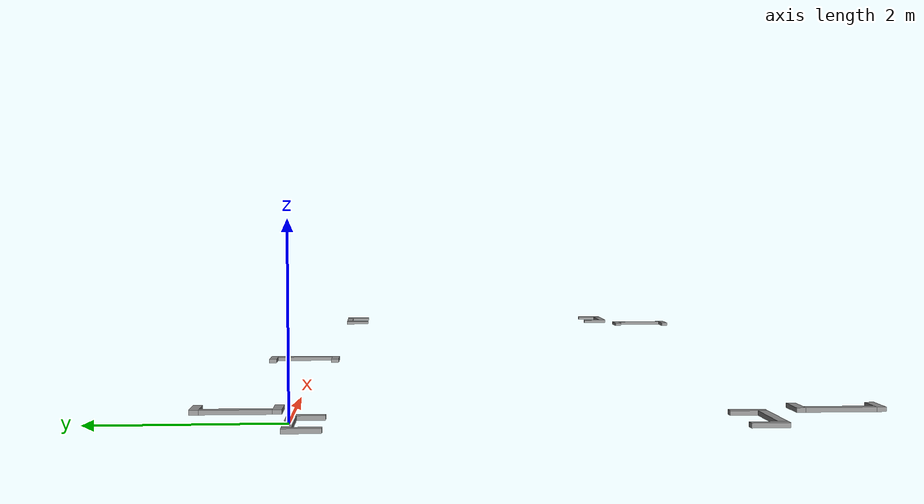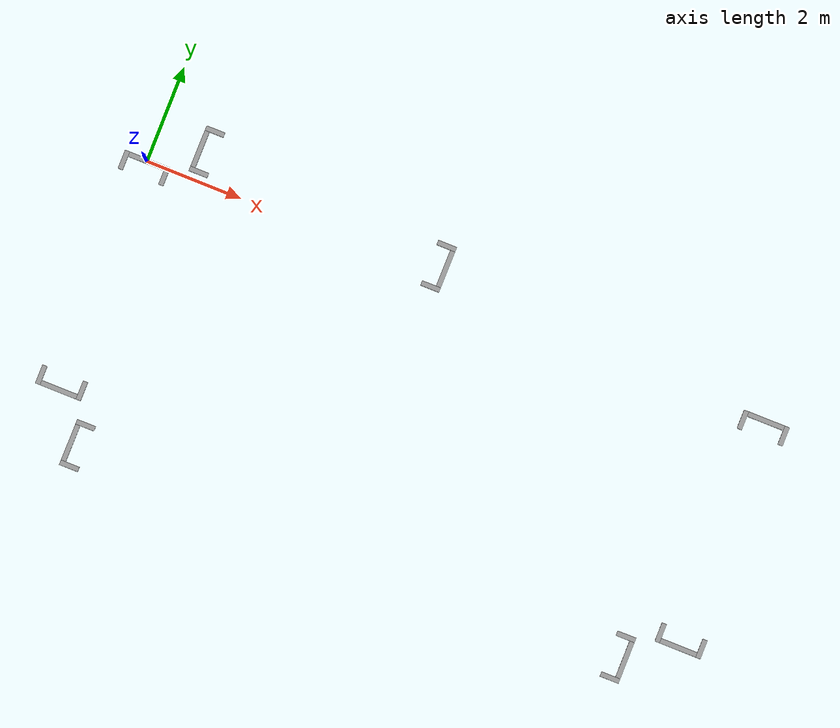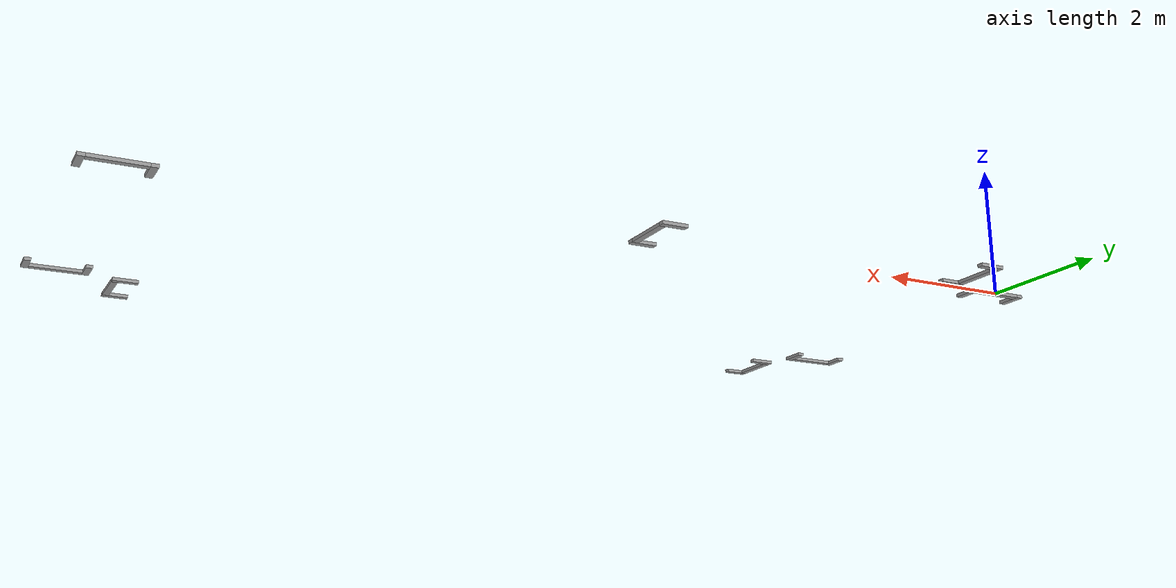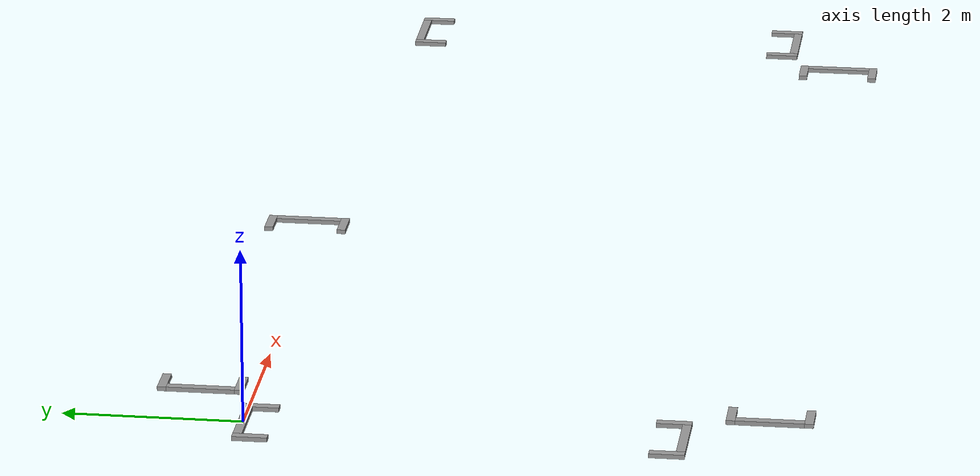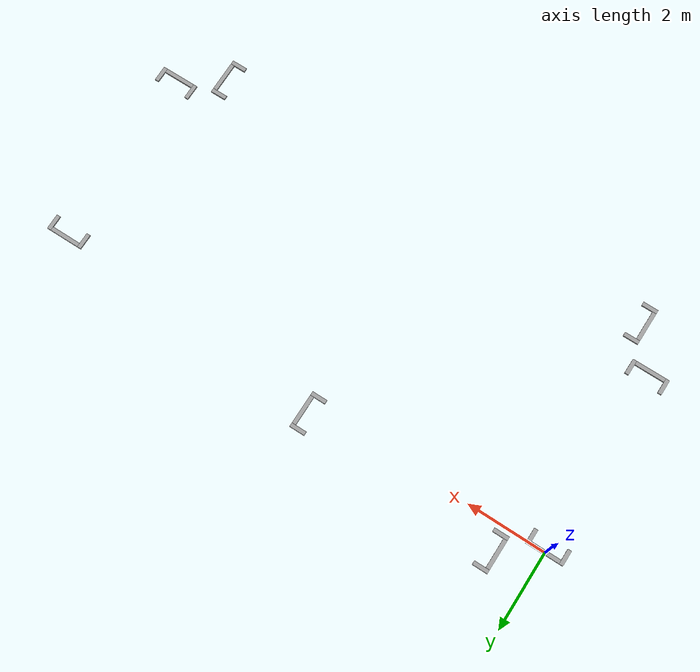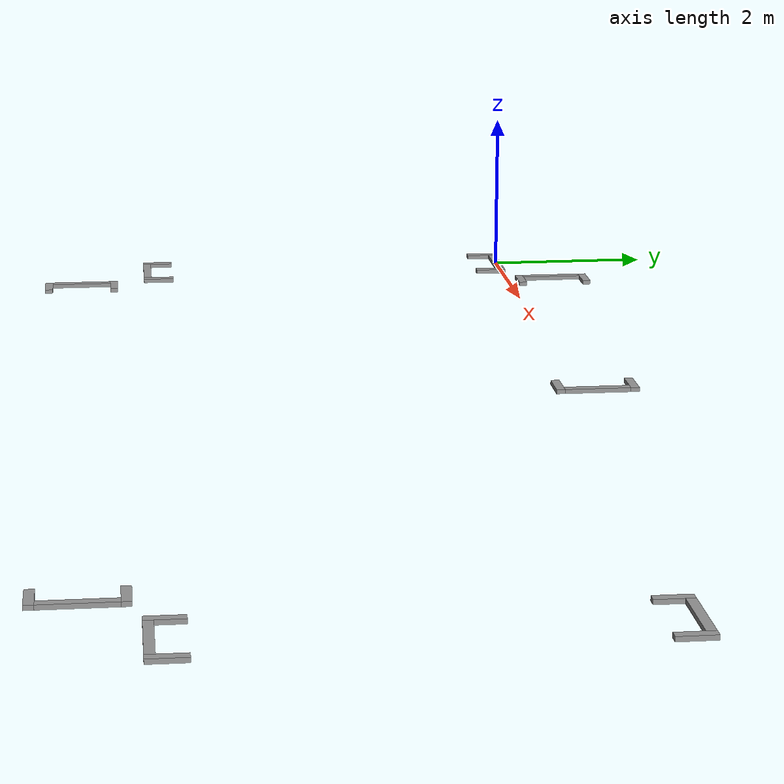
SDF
<?xml version='1.0'?>
<sdf version='1.7'>
  <model name='rack_base'>
    <link name='link'>
      <inertial>
        <pose>0 0 0 0 -0.0 0.0</pose>
        <mass>1.87</mass>
        <inertia>
          <ixx>0.01857</ixx>
          <ixy>0</ixy>
          <ixz>0</ixz>
          <iyy>0.015598</iyy>
          <iyz>0</iyz>
          <izz>0.00305</izz>
        </inertia>
      </inertial>
      <self_collide>0</self_collide>
      <enable_wind>0</enable_wind>
      <kinematic>0</kinematic>
      <pose>0 -0.154224 0 0 -0 0</pose>
      <gravity>1</gravity>
      <visual name='visual_3'>
        <cast_shadows>0</cast_shadows>
        <geometry>
          <box>
            <size>0.1 0.39 0.05</size>
          </box>
        </geometry>
        <material>
          <lighting>1</lighting>
          <script>
            <uri>file://media/materials/scripts/gazebo.material</uri>
            <name>Gazebo/Grey</name>
          </script>
          <shader type='pixel'>
            <normal_map>__default__</normal_map>
          </shader>
          <ambient>0.3 0.3 0.3 1</ambient>
          <diffuse>0.7 0.7 0.7 1</diffuse>
          <specular>0.01 0.01 0.01 1</specular>
          <emissive>0 0 0 1</emissive>
        </material>
        <pose>0.43 0.01 0 0 -0 0</pose>
        <transparency>0</transparency>
      </visual>
      <visual name='visual_4'>
        <cast_shadows>0</cast_shadows>
        <geometry>
          <box>
            <size>0.1 0.39 0.05</size>
          </box>
        </geometry>
        <material>
          <lighting>1</lighting>
          <script>
            <uri>file://media/materials/scripts/gazebo.material</uri>
            <name>Gazebo/Grey</name>
          </script>
          <shader type='pixel'>
            <normal_map>__default__</normal_map>
          </shader>
          <ambient>0.3 0.3 0.3 1</ambient>
          <diffuse>0.7 0.7 0.7 1</diffuse>
          <specular>0.01 0.01 0.01 1</specular>
          <emissive>0 0 0 1</emissive>
        </material>
        <pose>-0.43 0.01 0 0 -0 0</pose>
        <transparency>0</transparency>
      </visual>
      <visual name='visual_1'>
        <cast_shadows>0</cast_shadows>
        <geometry>
          <box>
            <size>0.76 0.1 0.05</size>
          </box>
        </geometry>
        <material>
          <lighting>1</lighting>
          <script>
            <uri>file://media/materials/scripts/gazebo.material</uri>
            <name>Gazebo/Grey</name>
          </script>
          <shader type='pixel'>
            <normal_map>__default__</normal_map>
          </shader>
          <ambient>0.3 0.3 0.3 1</ambient>
          <diffuse>0.7 0.7 0.7 1</diffuse>
          <specular>0.01 0.01 0.01 1</specular>
          <emissive>0 0 0 1</emissive>
        </material>
        <pose>0 0.155 0 0 -0 0</pose>
        <transparency>0</transparency>
      </visual>
      <collision name='collision_7'>
        <laser_retro>0</laser_retro>
        <max_contacts>10</max_contacts>
        <pose>0.43 0.01 0 0 -0 0</pose>
        <geometry>
          <box>
            <size>0.1 0.39 0.05</size>
          </box>
        </geometry>
        <surface>
          <friction>
            <ode>
              <mu>1</mu>
              <mu2>1</mu2>
              <fdir1>0 0 0</fdir1>
              <slip1>0</slip1>
              <slip2>0</slip2>
            </ode>
            <torsional>
              <coefficient>1</coefficient>
              <patch_radius>0</patch_radius>
              <surface_radius>0</surface_radius>
              <use_patch_radius>1</use_patch_radius>
              <ode>
                <slip>0</slip>
              </ode>
            </torsional>
          </friction>
          <bounce>
            <restitution_coefficient>0</restitution_coefficient>
            <threshold>1e+06</threshold>
          </bounce>
          <contact>
            <collide_without_contact>0</collide_without_contact>
            <collide_without_contact_bitmask>1</collide_without_contact_bitmask>
            <collide_bitmask>1</collide_bitmask>
            <ode>
              <soft_cfm>0</soft_cfm>
              <soft_erp>0.2</soft_erp>
              <kp>1e+13</kp>
              <kd>1</kd>
              <max_vel>0.01</max_vel>
              <min_depth>0</min_depth>
            </ode>
            <bullet>
              <split_impulse>1</split_impulse>
              <split_impulse_penetration_threshold>-0.01</split_impulse_penetration_threshold>
              <soft_cfm>0</soft_cfm>
              <soft_erp>0.2</soft_erp>
              <kp>1e+13</kp>
              <kd>1</kd>
            </bullet>
          </contact>
        </surface>
      </collision>
      <collision name='collision_8'>
        <laser_retro>0</laser_retro>
        <max_contacts>10</max_contacts>
        <pose>-0.43 0.01 0 0 -0 0</pose>
        <geometry>
          <box>
            <size>0.1 0.39 0.05</size>
          </box>
        </geometry>
        <surface>
          <friction>
            <ode>
              <mu>1</mu>
              <mu2>1</mu2>
              <fdir1>0 0 0</fdir1>
              <slip1>0</slip1>
              <slip2>0</slip2>
            </ode>
            <torsional>
              <coefficient>1</coefficient>
              <patch_radius>0</patch_radius>
              <surface_radius>0</surface_radius>
              <use_patch_radius>1</use_patch_radius>
              <ode>
                <slip>0</slip>
              </ode>
            </torsional>
          </friction>
          <bounce>
            <restitution_coefficient>0</restitution_coefficient>
            <threshold>1e+06</threshold>
          </bounce>
          <contact>
            <collide_without_contact>0</collide_without_contact>
            <collide_without_contact_bitmask>1</collide_without_contact_bitmask>
            <collide_bitmask>1</collide_bitmask>
            <ode>
              <soft_cfm>0</soft_cfm>
              <soft_erp>0.2</soft_erp>
              <kp>1e+13</kp>
              <kd>1</kd>
              <max_vel>0.01</max_vel>
              <min_depth>0</min_depth>
            </ode>
            <bullet>
              <split_impulse>1</split_impulse>
              <split_impulse_penetration_threshold>-0.01</split_impulse_penetration_threshold>
              <soft_cfm>0</soft_cfm>
              <soft_erp>0.2</soft_erp>
              <kp>1e+13</kp>
              <kd>1</kd>
            </bullet>
          </contact>
        </surface>
      </collision>
      <collision name='collision_6'>
        <laser_retro>0</laser_retro>
        <max_contacts>10</max_contacts>
        <pose>0 0.155 0 0 -0 0</pose>
        <geometry>
          <box>
            <size>0.76 0.1 0.05</size>
          </box>
        </geometry>
        <surface>
          <friction>
            <ode>
              <mu>1</mu>
              <mu2>1</mu2>
              <fdir1>0 0 0</fdir1>
              <slip1>0</slip1>
              <slip2>0</slip2>
            </ode>
            <torsional>
              <coefficient>1</coefficient>
              <patch_radius>0</patch_radius>
              <surface_radius>0</surface_radius>
              <use_patch_radius>1</use_patch_radius>
              <ode>
                <slip>0</slip>
              </ode>
            </torsional>
          </friction>
          <bounce>
            <restitution_coefficient>0</restitution_coefficient>
            <threshold>1e+06</threshold>
          </bounce>
          <contact>
            <collide_without_contact>0</collide_without_contact>
            <collide_without_contact_bitmask>1</collide_without_contact_bitmask>
            <collide_bitmask>1</collide_bitmask>
            <ode>
              <soft_cfm>0</soft_cfm>
              <soft_erp>0.2</soft_erp>
              <kp>1e+13</kp>
              <kd>1</kd>
              <max_vel>0.01</max_vel>
              <min_depth>0</min_depth>
            </ode>
            <bullet>
              <split_impulse>1</split_impulse>
              <split_impulse_penetration_threshold>-0.01</split_impulse_penetration_threshold>
              <soft_cfm>0</soft_cfm>
              <soft_erp>0.2</soft_erp>
              <kp>1e+13</kp>
              <kd>1</kd>
            </bullet>
          </contact>
        </surface>
      </collision>
    </link>
    <link name='link_clone'>
      <inertial>
        <pose>0 0 0 0 -0 0</pose>
        <mass>1.87</mass>
        <inertia>
          <ixx>0.01857</ixx>
          <ixy>0</ixy>
          <ixz>0</ixz>
          <iyy>0.015598</iyy>
          <iyz>0</iyz>
          <izz>0.00305</izz>
        </inertia>
      </inertial>
      <self_collide>0</self_collide>
      <enable_wind>0</enable_wind>
      <kinematic>0</kinematic>
      <pose>1.04088 0.608999 0 0 -0 1.57</pose>
      <gravity>1</gravity>
      <visual name='visual_1'>
        <cast_shadows>0</cast_shadows>
        <geometry>
          <box>
            <size>0.76 0.1 0.05</size>
          </box>
        </geometry>
        <material>
          <lighting>1</lighting>
          <script>
            <uri>file://media/materials/scripts/gazebo.material</uri>
            <name>Gazebo/Grey</name>
          </script>
          <shader type='pixel'>
            <normal_map>__default__</normal_map>
          </shader>
          <ambient>0.3 0.3 0.3 1</ambient>
          <diffuse>0.7 0.7 0.7 1</diffuse>
          <specular>0.01 0.01 0.01 1</specular>
          <emissive>0 0 0 1</emissive>
        </material>
        <pose>0 0.155 0 0 -0 0</pose>
        <transparency>0</transparency>
      </visual>
      <visual name='visual_3'>
        <cast_shadows>0</cast_shadows>
        <geometry>
          <box>
            <size>0.1 0.39 0.05</size>
          </box>
        </geometry>
        <material>
          <lighting>1</lighting>
          <script>
            <uri>file://media/materials/scripts/gazebo.material</uri>
            <name>Gazebo/Grey</name>
          </script>
          <shader type='pixel'>
            <normal_map>__default__</normal_map>
          </shader>
          <ambient>0.3 0.3 0.3 1</ambient>
          <diffuse>0.7 0.7 0.7 1</diffuse>
          <specular>0.01 0.01 0.01 1</specular>
          <emissive>0 0 0 1</emissive>
        </material>
        <pose>0.43 0.01 0 0 -0 0</pose>
        <transparency>0</transparency>
      </visual>
      <visual name='visual_4'>
        <cast_shadows>0</cast_shadows>
        <geometry>
          <box>
            <size>0.1 0.39 0.05</size>
          </box>
        </geometry>
        <material>
          <lighting>1</lighting>
          <script>
            <uri>file://media/materials/scripts/gazebo.material</uri>
            <name>Gazebo/Grey</name>
          </script>
          <shader type='pixel'>
            <normal_map>__default__</normal_map>
          </shader>
          <ambient>0.3 0.3 0.3 1</ambient>
          <diffuse>0.7 0.7 0.7 1</diffuse>
          <specular>0.01 0.01 0.01 1</specular>
          <emissive>0 0 0 1</emissive>
        </material>
        <pose>-0.43 0.01 0 0 -0 0</pose>
        <transparency>0</transparency>
      </visual>
      <collision name='collision_7'>
        <laser_retro>0</laser_retro>
        <max_contacts>10</max_contacts>
        <pose>0.43 0.01 0 0 -0 0</pose>
        <geometry>
          <box>
            <size>0.1 0.39 0.05</size>
          </box>
        </geometry>
        <surface>
          <friction>
            <ode>
              <mu>1</mu>
              <mu2>1</mu2>
              <fdir1>0 0 0</fdir1>
              <slip1>0</slip1>
              <slip2>0</slip2>
            </ode>
            <torsional>
              <coefficient>1</coefficient>
              <patch_radius>0</patch_radius>
              <surface_radius>0</surface_radius>
              <use_patch_radius>1</use_patch_radius>
              <ode>
                <slip>0</slip>
              </ode>
            </torsional>
          </friction>
          <bounce>
            <restitution_coefficient>0</restitution_coefficient>
            <threshold>1e+06</threshold>
          </bounce>
          <contact>
            <collide_without_contact>0</collide_without_contact>
            <collide_without_contact_bitmask>1</collide_without_contact_bitmask>
            <collide_bitmask>1</collide_bitmask>
            <ode>
              <soft_cfm>0</soft_cfm>
              <soft_erp>0.2</soft_erp>
              <kp>1e+13</kp>
              <kd>1</kd>
              <max_vel>0.01</max_vel>
              <min_depth>0</min_depth>
            </ode>
            <bullet>
              <split_impulse>1</split_impulse>
              <split_impulse_penetration_threshold>-0.01</split_impulse_penetration_threshold>
              <soft_cfm>0</soft_cfm>
              <soft_erp>0.2</soft_erp>
              <kp>1e+13</kp>
              <kd>1</kd>
            </bullet>
          </contact>
        </surface>
      </collision>
      <collision name='collision_8'>
        <laser_retro>0</laser_retro>
        <max_contacts>10</max_contacts>
        <pose>-0.43 0.01 0 0 -0 0</pose>
        <geometry>
          <box>
            <size>0.1 0.39 0.05</size>
          </box>
        </geometry>
        <surface>
          <friction>
            <ode>
              <mu>1</mu>
              <mu2>1</mu2>
              <fdir1>0 0 0</fdir1>
              <slip1>0</slip1>
              <slip2>0</slip2>
            </ode>
            <torsional>
              <coefficient>1</coefficient>
              <patch_radius>0</patch_radius>
              <surface_radius>0</surface_radius>
              <use_patch_radius>1</use_patch_radius>
              <ode>
                <slip>0</slip>
              </ode>
            </torsional>
          </friction>
          <bounce>
            <restitution_coefficient>0</restitution_coefficient>
            <threshold>1e+06</threshold>
          </bounce>
          <contact>
            <collide_without_contact>0</collide_without_contact>
            <collide_without_contact_bitmask>1</collide_without_contact_bitmask>
            <collide_bitmask>1</collide_bitmask>
            <ode>
              <soft_cfm>0</soft_cfm>
              <soft_erp>0.2</soft_erp>
              <kp>1e+13</kp>
              <kd>1</kd>
              <max_vel>0.01</max_vel>
              <min_depth>0</min_depth>
            </ode>
            <bullet>
              <split_impulse>1</split_impulse>
              <split_impulse_penetration_threshold>-0.01</split_impulse_penetration_threshold>
              <soft_cfm>0</soft_cfm>
              <soft_erp>0.2</soft_erp>
              <kp>1e+13</kp>
              <kd>1</kd>
            </bullet>
          </contact>
        </surface>
      </collision>
      <collision name='collision_6'>
        <laser_retro>0</laser_retro>
        <max_contacts>10</max_contacts>
        <pose>0 0.155 0 0 -0 0</pose>
        <geometry>
          <box>
            <size>0.76 0.1 0.05</size>
          </box>
        </geometry>
        <surface>
          <friction>
            <ode>
              <mu>1</mu>
              <mu2>1</mu2>
              <fdir1>0 0 0</fdir1>
              <slip1>0</slip1>
              <slip2>0</slip2>
            </ode>
            <torsional>
              <coefficient>1</coefficient>
              <patch_radius>0</patch_radius>
              <surface_radius>0</surface_radius>
              <use_patch_radius>1</use_patch_radius>
              <ode>
                <slip>0</slip>
              </ode>
            </torsional>
          </friction>
          <bounce>
            <restitution_coefficient>0</restitution_coefficient>
            <threshold>1e+06</threshold>
          </bounce>
          <contact>
            <collide_without_contact>0</collide_without_contact>
            <collide_without_contact_bitmask>1</collide_without_contact_bitmask>
            <collide_bitmask>1</collide_bitmask>
            <ode>
              <soft_cfm>0</soft_cfm>
              <soft_erp>0.2</soft_erp>
              <kp>1e+13</kp>
              <kd>1</kd>
              <max_vel>0.01</max_vel>
              <min_depth>0</min_depth>
            </ode>
            <bullet>
              <split_impulse>1</split_impulse>
              <split_impulse_penetration_threshold>-0.01</split_impulse_penetration_threshold>
              <soft_cfm>0</soft_cfm>
              <soft_erp>0.2</soft_erp>
              <kp>1e+13</kp>
              <kd>1</kd>
            </bullet>
          </contact>
        </surface>
      </collision>
    </link>
    <link name='link_clone_clone'>
      <inertial>
        <pose>0 0 0 0 -0 0</pose>
        <mass>1.87</mass>
        <inertia>
          <ixx>0.01857</ixx>
          <ixy>0</ixy>
          <ixz>0</ixz>
          <iyy>0.015598</iyy>
          <iyz>0</iyz>
          <izz>0.00305</izz>
        </inertia>
      </inertial>
      <self_collide>0</self_collide>
      <enable_wind>0</enable_wind>
      <kinematic>0</kinematic>
      <pose>0.063792 -4.66838 0 0 -0 3.14</pose>
      <gravity>1</gravity>
      <visual name='visual_3'>
        <cast_shadows>0</cast_shadows>
        <geometry>
          <box>
            <size>0.1 0.39 0.05</size>
          </box>
        </geometry>
        <material>
          <lighting>1</lighting>
          <script>
            <uri>file://media/materials/scripts/gazebo.material</uri>
            <name>Gazebo/Grey</name>
          </script>
          <shader type='pixel'>
            <normal_map>__default__</normal_map>
          </shader>
          <ambient>0.3 0.3 0.3 1</ambient>
          <diffuse>0.7 0.7 0.7 1</diffuse>
          <specular>0.01 0.01 0.01 1</specular>
          <emissive>0 0 0 1</emissive>
        </material>
        <pose>0.43 0.01 0 0 -0 0</pose>
        <transparency>0</transparency>
      </visual>
      <visual name='visual_1'>
        <cast_shadows>0</cast_shadows>
        <geometry>
          <box>
            <size>0.76 0.1 0.05</size>
          </box>
        </geometry>
        <material>
          <lighting>1</lighting>
          <script>
            <uri>file://media/materials/scripts/gazebo.material</uri>
            <name>Gazebo/Grey</name>
          </script>
          <shader type='pixel'>
            <normal_map>__default__</normal_map>
          </shader>
          <ambient>0.3 0.3 0.3 1</ambient>
          <diffuse>0.7 0.7 0.7 1</diffuse>
          <specular>0.01 0.01 0.01 1</specular>
          <emissive>0 0 0 1</emissive>
        </material>
        <pose>0 0.155 0 0 -0 0</pose>
        <transparency>0</transparency>
      </visual>
      <visual name='visual_4'>
        <cast_shadows>0</cast_shadows>
        <geometry>
          <box>
            <size>0.1 0.39 0.05</size>
          </box>
        </geometry>
        <material>
          <lighting>1</lighting>
          <script>
            <uri>file://media/materials/scripts/gazebo.material</uri>
            <name>Gazebo/Grey</name>
          </script>
          <shader type='pixel'>
            <normal_map>__default__</normal_map>
          </shader>
          <ambient>0.3 0.3 0.3 1</ambient>
          <diffuse>0.7 0.7 0.7 1</diffuse>
          <specular>0.01 0.01 0.01 1</specular>
          <emissive>0 0 0 1</emissive>
        </material>
        <pose>-0.43 0.01 0 0 -0 0</pose>
        <transparency>0</transparency>
      </visual>
      <collision name='collision_8'>
        <laser_retro>0</laser_retro>
        <max_contacts>10</max_contacts>
        <pose>-0.43 0.01 0 0 -0 0</pose>
        <geometry>
          <box>
            <size>0.1 0.39 0.05</size>
          </box>
        </geometry>
        <surface>
          <friction>
            <ode>
              <mu>1</mu>
              <mu2>1</mu2>
              <fdir1>0 0 0</fdir1>
              <slip1>0</slip1>
              <slip2>0</slip2>
            </ode>
            <torsional>
              <coefficient>1</coefficient>
              <patch_radius>0</patch_radius>
              <surface_radius>0</surface_radius>
              <use_patch_radius>1</use_patch_radius>
              <ode>
                <slip>0</slip>
              </ode>
            </torsional>
          </friction>
          <bounce>
            <restitution_coefficient>0</restitution_coefficient>
            <threshold>1e+06</threshold>
          </bounce>
          <contact>
            <collide_without_contact>0</collide_without_contact>
            <collide_without_contact_bitmask>1</collide_without_contact_bitmask>
            <collide_bitmask>1</collide_bitmask>
            <ode>
              <soft_cfm>0</soft_cfm>
              <soft_erp>0.2</soft_erp>
              <kp>1e+13</kp>
              <kd>1</kd>
              <max_vel>0.01</max_vel>
              <min_depth>0</min_depth>
            </ode>
            <bullet>
              <split_impulse>1</split_impulse>
              <split_impulse_penetration_threshold>-0.01</split_impulse_penetration_threshold>
              <soft_cfm>0</soft_cfm>
              <soft_erp>0.2</soft_erp>
              <kp>1e+13</kp>
              <kd>1</kd>
            </bullet>
          </contact>
        </surface>
      </collision>
      <collision name='collision_7'>
        <laser_retro>0</laser_retro>
        <max_contacts>10</max_contacts>
        <pose>0.43 0.01 0 0 -0 0</pose>
        <geometry>
          <box>
            <size>0.1 0.39 0.05</size>
          </box>
        </geometry>
        <surface>
          <friction>
            <ode>
              <mu>1</mu>
              <mu2>1</mu2>
              <fdir1>0 0 0</fdir1>
              <slip1>0</slip1>
              <slip2>0</slip2>
            </ode>
            <torsional>
              <coefficient>1</coefficient>
              <patch_radius>0</patch_radius>
              <surface_radius>0</surface_radius>
              <use_patch_radius>1</use_patch_radius>
              <ode>
                <slip>0</slip>
              </ode>
            </torsional>
          </friction>
          <bounce>
            <restitution_coefficient>0</restitution_coefficient>
            <threshold>1e+06</threshold>
          </bounce>
          <contact>
            <collide_without_contact>0</collide_without_contact>
            <collide_without_contact_bitmask>1</collide_without_contact_bitmask>
            <collide_bitmask>1</collide_bitmask>
            <ode>
              <soft_cfm>0</soft_cfm>
              <soft_erp>0.2</soft_erp>
              <kp>1e+13</kp>
              <kd>1</kd>
              <max_vel>0.01</max_vel>
              <min_depth>0</min_depth>
            </ode>
            <bullet>
              <split_impulse>1</split_impulse>
              <split_impulse_penetration_threshold>-0.01</split_impulse_penetration_threshold>
              <soft_cfm>0</soft_cfm>
              <soft_erp>0.2</soft_erp>
              <kp>1e+13</kp>
              <kd>1</kd>
            </bullet>
          </contact>
        </surface>
      </collision>
      <collision name='collision_6'>
        <laser_retro>0</laser_retro>
        <max_contacts>10</max_contacts>
        <pose>0 0.155 0 0 -0 0</pose>
        <geometry>
          <box>
            <size>0.76 0.1 0.05</size>
          </box>
        </geometry>
        <surface>
          <friction>
            <ode>
              <mu>1</mu>
              <mu2>1</mu2>
              <fdir1>0 0 0</fdir1>
              <slip1>0</slip1>
              <slip2>0</slip2>
            </ode>
            <torsional>
              <coefficient>1</coefficient>
              <patch_radius>0</patch_radius>
              <surface_radius>0</surface_radius>
              <use_patch_radius>1</use_patch_radius>
              <ode>
                <slip>0</slip>
              </ode>
            </torsional>
          </friction>
          <bounce>
            <restitution_coefficient>0</restitution_coefficient>
            <threshold>1e+06</threshold>
          </bounce>
          <contact>
            <collide_without_contact>0</collide_without_contact>
            <collide_without_contact_bitmask>1</collide_without_contact_bitmask>
            <collide_bitmask>1</collide_bitmask>
            <ode>
              <soft_cfm>0</soft_cfm>
              <soft_erp>0.2</soft_erp>
              <kp>1e+13</kp>
              <kd>1</kd>
              <max_vel>0.01</max_vel>
              <min_depth>0</min_depth>
            </ode>
            <bullet>
              <split_impulse>1</split_impulse>
              <split_impulse_penetration_threshold>-0.01</split_impulse_penetration_threshold>
              <soft_cfm>0</soft_cfm>
              <soft_erp>0.2</soft_erp>
              <kp>1e+13</kp>
              <kd>1</kd>
            </bullet>
          </contact>
        </surface>
      </collision>
    </link>
    <link name='link_clone_clone_0'>
      <inertial>
        <pose>0 0 0 0 -0 0</pose>
        <mass>1.87</mass>
        <inertia>
          <ixx>0.01857</ixx>
          <ixy>0</ixy>
          <ixz>0</ixz>
          <iyy>0.015598</iyy>
          <iyz>0</iyz>
          <izz>0.00305</izz>
        </inertia>
      </inertial>
      <self_collide>0</self_collide>
      <enable_wind>0</enable_wind>
      <kinematic>0</kinematic>
      <pose>0.823684 -5.70923 0 0 -0 1.57</pose>
      <gravity>1</gravity>
      <visual name='visual_1'>
        <cast_shadows>0</cast_shadows>
        <geometry>
          <box>
            <size>0.76 0.1 0.05</size>
          </box>
        </geometry>
        <material>
          <lighting>1</lighting>
          <script>
            <uri>file://media/materials/scripts/gazebo.material</uri>
            <name>Gazebo/Grey</name>
          </script>
          <shader type='pixel'>
            <normal_map>__default__</normal_map>
          </shader>
          <ambient>0.3 0.3 0.3 1</ambient>
          <diffuse>0.7 0.7 0.7 1</diffuse>
          <specular>0.01 0.01 0.01 1</specular>
          <emissive>0 0 0 1</emissive>
        </material>
        <pose>0 0.155 0 0 -0 0</pose>
        <transparency>0</transparency>
      </visual>
      <visual name='visual_4'>
        <cast_shadows>0</cast_shadows>
        <geometry>
          <box>
            <size>0.1 0.39 0.05</size>
          </box>
        </geometry>
        <material>
          <lighting>1</lighting>
          <script>
            <uri>file://media/materials/scripts/gazebo.material</uri>
            <name>Gazebo/Grey</name>
          </script>
          <shader type='pixel'>
            <normal_map>__default__</normal_map>
          </shader>
          <ambient>0.3 0.3 0.3 1</ambient>
          <diffuse>0.7 0.7 0.7 1</diffuse>
          <specular>0.01 0.01 0.01 1</specular>
          <emissive>0 0 0 1</emissive>
        </material>
        <pose>-0.43 0.01 0 0 -0 0</pose>
        <transparency>0</transparency>
      </visual>
      <visual name='visual_3'>
        <cast_shadows>0</cast_shadows>
        <geometry>
          <box>
            <size>0.1 0.39 0.05</size>
          </box>
        </geometry>
        <material>
          <lighting>1</lighting>
          <script>
            <uri>file://media/materials/scripts/gazebo.material</uri>
            <name>Gazebo/Grey</name>
          </script>
          <shader type='pixel'>
            <normal_map>__default__</normal_map>
          </shader>
          <ambient>0.3 0.3 0.3 1</ambient>
          <diffuse>0.7 0.7 0.7 1</diffuse>
          <specular>0.01 0.01 0.01 1</specular>
          <emissive>0 0 0 1</emissive>
        </material>
        <pose>0.43 0.01 0 0 -0 0</pose>
        <transparency>0</transparency>
      </visual>
      <collision name='collision_8'>
        <laser_retro>0</laser_retro>
        <max_contacts>10</max_contacts>
        <pose>-0.43 0.01 0 0 -0 0</pose>
        <geometry>
          <box>
            <size>0.1 0.39 0.05</size>
          </box>
        </geometry>
        <surface>
          <friction>
            <ode>
              <mu>1</mu>
              <mu2>1</mu2>
              <fdir1>0 0 0</fdir1>
              <slip1>0</slip1>
              <slip2>0</slip2>
            </ode>
            <torsional>
              <coefficient>1</coefficient>
              <patch_radius>0</patch_radius>
              <surface_radius>0</surface_radius>
              <use_patch_radius>1</use_patch_radius>
              <ode>
                <slip>0</slip>
              </ode>
            </torsional>
          </friction>
          <bounce>
            <restitution_coefficient>0</restitution_coefficient>
            <threshold>1e+06</threshold>
          </bounce>
          <contact>
            <collide_without_contact>0</collide_without_contact>
            <collide_without_contact_bitmask>1</collide_without_contact_bitmask>
            <collide_bitmask>1</collide_bitmask>
            <ode>
              <soft_cfm>0</soft_cfm>
              <soft_erp>0.2</soft_erp>
              <kp>1e+13</kp>
              <kd>1</kd>
              <max_vel>0.01</max_vel>
              <min_depth>0</min_depth>
            </ode>
            <bullet>
              <split_impulse>1</split_impulse>
              <split_impulse_penetration_threshold>-0.01</split_impulse_penetration_threshold>
              <soft_cfm>0</soft_cfm>
              <soft_erp>0.2</soft_erp>
              <kp>1e+13</kp>
              <kd>1</kd>
            </bullet>
          </contact>
        </surface>
      </collision>
      <collision name='collision_6'>
        <laser_retro>0</laser_retro>
        <max_contacts>10</max_contacts>
        <pose>0 0.155 0 0 -0 0</pose>
        <geometry>
          <box>
            <size>0.76 0.1 0.05</size>
          </box>
        </geometry>
        <surface>
          <friction>
            <ode>
              <mu>1</mu>
              <mu2>1</mu2>
              <fdir1>0 0 0</fdir1>
              <slip1>0</slip1>
              <slip2>0</slip2>
            </ode>
            <torsional>
              <coefficient>1</coefficient>
              <patch_radius>0</patch_radius>
              <surface_radius>0</surface_radius>
              <use_patch_radius>1</use_patch_radius>
              <ode>
                <slip>0</slip>
              </ode>
            </torsional>
          </friction>
          <bounce>
            <restitution_coefficient>0</restitution_coefficient>
            <threshold>1e+06</threshold>
          </bounce>
          <contact>
            <collide_without_contact>0</collide_without_contact>
            <collide_without_contact_bitmask>1</collide_without_contact_bitmask>
            <collide_bitmask>1</collide_bitmask>
            <ode>
              <soft_cfm>0</soft_cfm>
              <soft_erp>0.2</soft_erp>
              <kp>1e+13</kp>
              <kd>1</kd>
              <max_vel>0.01</max_vel>
              <min_depth>0</min_depth>
            </ode>
            <bullet>
              <split_impulse>1</split_impulse>
              <split_impulse_penetration_threshold>-0.01</split_impulse_penetration_threshold>
              <soft_cfm>0</soft_cfm>
              <soft_erp>0.2</soft_erp>
              <kp>1e+13</kp>
              <kd>1</kd>
            </bullet>
          </contact>
        </surface>
      </collision>
      <collision name='collision_7'>
        <laser_retro>0</laser_retro>
        <max_contacts>10</max_contacts>
        <pose>0.43 0.01 0 0 -0 0</pose>
        <geometry>
          <box>
            <size>0.1 0.39 0.05</size>
          </box>
        </geometry>
        <surface>
          <friction>
            <ode>
              <mu>1</mu>
              <mu2>1</mu2>
              <fdir1>0 0 0</fdir1>
              <slip1>0</slip1>
              <slip2>0</slip2>
            </ode>
            <torsional>
              <coefficient>1</coefficient>
              <patch_radius>0</patch_radius>
              <surface_radius>0</surface_radius>
              <use_patch_radius>1</use_patch_radius>
              <ode>
                <slip>0</slip>
              </ode>
            </torsional>
          </friction>
          <bounce>
            <restitution_coefficient>0</restitution_coefficient>
            <threshold>1e+06</threshold>
          </bounce>
          <contact>
            <collide_without_contact>0</collide_without_contact>
            <collide_without_contact_bitmask>1</collide_without_contact_bitmask>
            <collide_bitmask>1</collide_bitmask>
            <ode>
              <soft_cfm>0</soft_cfm>
              <soft_erp>0.2</soft_erp>
              <kp>1e+13</kp>
              <kd>1</kd>
              <max_vel>0.01</max_vel>
              <min_depth>0</min_depth>
            </ode>
            <bullet>
              <split_impulse>1</split_impulse>
              <split_impulse_penetration_threshold>-0.01</split_impulse_penetration_threshold>
              <soft_cfm>0</soft_cfm>
              <soft_erp>0.2</soft_erp>
              <kp>1e+13</kp>
              <kd>1</kd>
            </bullet>
          </contact>
        </surface>
      </collision>
    </link>
    <link name='link_clone_clone_1'>
      <inertial>
        <pose>0 0 0 0 -0 0</pose>
        <mass>1.87</mass>
        <inertia>
          <ixx>0.01857</ixx>
          <ixy>0</ixy>
          <ixz>0</ixz>
          <iyy>0.015598</iyy>
          <iyz>0</iyz>
          <izz>0.00305</izz>
        </inertia>
      </inertial>
      <self_collide>0</self_collide>
      <enable_wind>0</enable_wind>
      <kinematic>0</kinematic>
      <pose>13.2129 -0.430131 0 0 -0 0</pose>
      <gravity>1</gravity>
      <visual name='visual_1'>
        <cast_shadows>0</cast_shadows>
        <geometry>
          <box>
            <size>0.76 0.1 0.05</size>
          </box>
        </geometry>
        <material>
          <lighting>1</lighting>
          <script>
            <uri>file://media/materials/scripts/gazebo.material</uri>
            <name>Gazebo/Grey</name>
          </script>
          <shader type='pixel'>
            <normal_map>__default__</normal_map>
          </shader>
          <ambient>0.3 0.3 0.3 1</ambient>
          <diffuse>0.7 0.7 0.7 1</diffuse>
          <specular>0.01 0.01 0.01 1</specular>
          <emissive>0 0 0 1</emissive>
        </material>
        <pose>0 0.155 0 0 -0 0</pose>
        <transparency>0</transparency>
      </visual>
      <visual name='visual_3'>
        <cast_shadows>0</cast_shadows>
        <geometry>
          <box>
            <size>0.1 0.39 0.05</size>
          </box>
        </geometry>
        <material>
          <lighting>1</lighting>
          <script>
            <uri>file://media/materials/scripts/gazebo.material</uri>
            <name>Gazebo/Grey</name>
          </script>
          <shader type='pixel'>
            <normal_map>__default__</normal_map>
          </shader>
          <ambient>0.3 0.3 0.3 1</ambient>
          <diffuse>0.7 0.7 0.7 1</diffuse>
          <specular>0.01 0.01 0.01 1</specular>
          <emissive>0 0 0 1</emissive>
        </material>
        <pose>0.43 0.01 0 0 -0 0</pose>
        <transparency>0</transparency>
      </visual>
      <visual name='visual_4'>
        <cast_shadows>0</cast_shadows>
        <geometry>
          <box>
            <size>0.1 0.39 0.05</size>
          </box>
        </geometry>
        <material>
          <lighting>1</lighting>
          <script>
            <uri>file://media/materials/scripts/gazebo.material</uri>
            <name>Gazebo/Grey</name>
          </script>
          <shader type='pixel'>
            <normal_map>__default__</normal_map>
          </shader>
          <ambient>0.3 0.3 0.3 1</ambient>
          <diffuse>0.7 0.7 0.7 1</diffuse>
          <specular>0.01 0.01 0.01 1</specular>
          <emissive>0 0 0 1</emissive>
        </material>
        <pose>-0.43 0.01 0 0 -0 0</pose>
        <transparency>0</transparency>
      </visual>
      <collision name='collision_7'>
        <laser_retro>0</laser_retro>
        <max_contacts>10</max_contacts>
        <pose>0.43 0.01 0 0 -0 0</pose>
        <geometry>
          <box>
            <size>0.1 0.39 0.05</size>
          </box>
        </geometry>
        <surface>
          <friction>
            <ode>
              <mu>1</mu>
              <mu2>1</mu2>
              <fdir1>0 0 0</fdir1>
              <slip1>0</slip1>
              <slip2>0</slip2>
            </ode>
            <torsional>
              <coefficient>1</coefficient>
              <patch_radius>0</patch_radius>
              <surface_radius>0</surface_radius>
              <use_patch_radius>1</use_patch_radius>
              <ode>
                <slip>0</slip>
              </ode>
            </torsional>
          </friction>
          <bounce>
            <restitution_coefficient>0</restitution_coefficient>
            <threshold>1e+06</threshold>
          </bounce>
          <contact>
            <collide_without_contact>0</collide_without_contact>
            <collide_without_contact_bitmask>1</collide_without_contact_bitmask>
            <collide_bitmask>1</collide_bitmask>
            <ode>
              <soft_cfm>0</soft_cfm>
              <soft_erp>0.2</soft_erp>
              <kp>1e+13</kp>
              <kd>1</kd>
              <max_vel>0.01</max_vel>
              <min_depth>0</min_depth>
            </ode>
            <bullet>
              <split_impulse>1</split_impulse>
              <split_impulse_penetration_threshold>-0.01</split_impulse_penetration_threshold>
              <soft_cfm>0</soft_cfm>
              <soft_erp>0.2</soft_erp>
              <kp>1e+13</kp>
              <kd>1</kd>
            </bullet>
          </contact>
        </surface>
      </collision>
      <collision name='collision_8'>
        <laser_retro>0</laser_retro>
        <max_contacts>10</max_contacts>
        <pose>-0.43 0.01 0 0 -0 0</pose>
        <geometry>
          <box>
            <size>0.1 0.39 0.05</size>
          </box>
        </geometry>
        <surface>
          <friction>
            <ode>
              <mu>1</mu>
              <mu2>1</mu2>
              <fdir1>0 0 0</fdir1>
              <slip1>0</slip1>
              <slip2>0</slip2>
            </ode>
            <torsional>
              <coefficient>1</coefficient>
              <patch_radius>0</patch_radius>
              <surface_radius>0</surface_radius>
              <use_patch_radius>1</use_patch_radius>
              <ode>
                <slip>0</slip>
              </ode>
            </torsional>
          </friction>
          <bounce>
            <restitution_coefficient>0</restitution_coefficient>
            <threshold>1e+06</threshold>
          </bounce>
          <contact>
            <collide_without_contact>0</collide_without_contact>
            <collide_without_contact_bitmask>1</collide_without_contact_bitmask>
            <collide_bitmask>1</collide_bitmask>
            <ode>
              <soft_cfm>0</soft_cfm>
              <soft_erp>0.2</soft_erp>
              <kp>1e+13</kp>
              <kd>1</kd>
              <max_vel>0.01</max_vel>
              <min_depth>0</min_depth>
            </ode>
            <bullet>
              <split_impulse>1</split_impulse>
              <split_impulse_penetration_threshold>-0.01</split_impulse_penetration_threshold>
              <soft_cfm>0</soft_cfm>
              <soft_erp>0.2</soft_erp>
              <kp>1e+13</kp>
              <kd>1</kd>
            </bullet>
          </contact>
        </surface>
      </collision>
      <collision name='collision_6'>
        <laser_retro>0</laser_retro>
        <max_contacts>10</max_contacts>
        <pose>0 0.155 0 0 -0 0</pose>
        <geometry>
          <box>
            <size>0.76 0.1 0.05</size>
          </box>
        </geometry>
        <surface>
          <friction>
            <ode>
              <mu>1</mu>
              <mu2>1</mu2>
              <fdir1>0 0 0</fdir1>
              <slip1>0</slip1>
              <slip2>0</slip2>
            </ode>
            <torsional>
              <coefficient>1</coefficient>
              <patch_radius>0</patch_radius>
              <surface_radius>0</surface_radius>
              <use_patch_radius>1</use_patch_radius>
              <ode>
                <slip>0</slip>
              </ode>
            </torsional>
          </friction>
          <bounce>
            <restitution_coefficient>0</restitution_coefficient>
            <threshold>1e+06</threshold>
          </bounce>
          <contact>
            <collide_without_contact>0</collide_without_contact>
            <collide_without_contact_bitmask>1</collide_without_contact_bitmask>
            <collide_bitmask>1</collide_bitmask>
            <ode>
              <soft_cfm>0</soft_cfm>
              <soft_erp>0.2</soft_erp>
              <kp>1e+13</kp>
              <kd>1</kd>
              <max_vel>0.01</max_vel>
              <min_depth>0</min_depth>
            </ode>
            <bullet>
              <split_impulse>1</split_impulse>
              <split_impulse_penetration_threshold>-0.01</split_impulse_penetration_threshold>
              <soft_cfm>0</soft_cfm>
              <soft_erp>0.2</soft_erp>
              <kp>1e+13</kp>
              <kd>1</kd>
            </bullet>
          </contact>
        </surface>
      </collision>
    </link>
    <link name='link_clone_clone_2'>
      <inertial>
        <pose>0 0 0 0 -0 0</pose>
        <mass>1.87</mass>
        <inertia>
          <ixx>2.02</ixx>
          <ixy>-8.09</ixy>
          <ixz>1.57</ixz>
          <iyy>0.015598</iyy>
          <iyz>0</iyz>
          <izz>0.00305</izz>
        </inertia>
      </inertial>
      <self_collide>0</self_collide>
      <enable_wind>0</enable_wind>
      <kinematic>0</kinematic>
      <pose>6.100000 0.190000 0 -0 0 4.71</pose>
      <gravity>1</gravity>
      <visual name='visual_1'>
        <cast_shadows>0</cast_shadows>
        <geometry>
          <box>
            <size>0.76 0.1 0.05</size>
          </box>
        </geometry>
        <material>
          <lighting>1</lighting>
          <script>
            <uri>file://media/materials/scripts/gazebo.material</uri>
            <name>Gazebo/Grey</name>
          </script>
          <shader type='pixel'>
            <normal_map>__default__</normal_map>
          </shader>
          <ambient>0.3 0.3 0.3 1</ambient>
          <diffuse>0.7 0.7 0.7 1</diffuse>
          <specular>0.01 0.01 0.01 1</specular>
          <emissive>0 0 0 1</emissive>
        </material>
        <pose>0 0.155 0 0 -0 0</pose>
        <transparency>0</transparency>
      </visual>
      <visual name='visual_3'>
        <cast_shadows>0</cast_shadows>
        <geometry>
          <box>
            <size>0.1 0.39 0.05</size>
          </box>
        </geometry>
        <material>
          <lighting>1</lighting>
          <script>
            <uri>file://media/materials/scripts/gazebo.material</uri>
            <name>Gazebo/Grey</name>
          </script>
          <shader type='pixel'>
            <normal_map>__default__</normal_map>
          </shader>
          <ambient>0.3 0.3 0.3 1</ambient>
          <diffuse>0.7 0.7 0.7 1</diffuse>
          <specular>0.01 0.01 0.01 1</specular>
          <emissive>0 0 0 1</emissive>
        </material>
        <pose>0.43 0.01 0 0 -0 0</pose>
        <transparency>0</transparency>
      </visual>
      <visual name='visual_4'>
        <cast_shadows>0</cast_shadows>
        <geometry>
          <box>
            <size>0.1 0.39 0.05</size>
          </box>
        </geometry>
        <material>
          <lighting>1</lighting>
          <script>
            <uri>file://media/materials/scripts/gazebo.material</uri>
            <name>Gazebo/Grey</name>
          </script>
          <shader type='pixel'>
            <normal_map>__default__</normal_map>
          </shader>
          <ambient>0.3 0.3 0.3 1</ambient>
          <diffuse>0.7 0.7 0.7 1</diffuse>
          <specular>0.01 0.01 0.01 1</specular>
          <emissive>0 0 0 1</emissive>
        </material>
        <pose>-0.43 0.01 0 0 -0 0</pose>
        <transparency>0</transparency>
      </visual>
      <collision name='collision_7'>
        <laser_retro>0</laser_retro>
        <max_contacts>10</max_contacts>
        <pose>0.43 0.01 0 0 -0 0</pose>
        <geometry>
          <box>
            <size>0.1 0.39 0.05</size>
          </box>
        </geometry>
        <surface>
          <friction>
            <ode>
              <mu>1</mu>
              <mu2>1</mu2>
              <fdir1>0 0 0</fdir1>
              <slip1>0</slip1>
              <slip2>0</slip2>
            </ode>
            <torsional>
              <coefficient>1</coefficient>
              <patch_radius>0</patch_radius>
              <surface_radius>0</surface_radius>
              <use_patch_radius>1</use_patch_radius>
              <ode>
                <slip>0</slip>
              </ode>
            </torsional>
          </friction>
          <bounce>
            <restitution_coefficient>0</restitution_coefficient>
            <threshold>1e+06</threshold>
          </bounce>
          <contact>
            <collide_without_contact>0</collide_without_contact>
            <collide_without_contact_bitmask>1</collide_without_contact_bitmask>
            <collide_bitmask>1</collide_bitmask>
            <ode>
              <soft_cfm>0</soft_cfm>
              <soft_erp>0.2</soft_erp>
              <kp>1e+13</kp>
              <kd>1</kd>
              <max_vel>0.01</max_vel>
              <min_depth>0</min_depth>
            </ode>
            <bullet>
              <split_impulse>1</split_impulse>
              <split_impulse_penetration_threshold>-0.01</split_impulse_penetration_threshold>
              <soft_cfm>0</soft_cfm>
              <soft_erp>0.2</soft_erp>
              <kp>1e+13</kp>
              <kd>1</kd>
            </bullet>
          </contact>
        </surface>
      </collision>
      <collision name='collision_8'>
        <laser_retro>0</laser_retro>
        <max_contacts>10</max_contacts>
        <pose>-0.43 0.01 0 0 -0 0</pose>
        <geometry>
          <box>
            <size>0.1 0.39 0.05</size>
          </box>
        </geometry>
        <surface>
          <friction>
            <ode>
              <mu>1</mu>
              <mu2>1</mu2>
              <fdir1>0 0 0</fdir1>
              <slip1>0</slip1>
              <slip2>0</slip2>
            </ode>
            <torsional>
              <coefficient>1</coefficient>
              <patch_radius>0</patch_radius>
              <surface_radius>0</surface_radius>
              <use_patch_radius>1</use_patch_radius>
              <ode>
                <slip>0</slip>
              </ode>
            </torsional>
          </friction>
          <bounce>
            <restitution_coefficient>0</restitution_coefficient>
            <threshold>1e+06</threshold>
          </bounce>
          <contact>
            <collide_without_contact>0</collide_without_contact>
            <collide_without_contact_bitmask>1</collide_without_contact_bitmask>
            <collide_bitmask>1</collide_bitmask>
            <ode>
              <soft_cfm>0</soft_cfm>
              <soft_erp>0.2</soft_erp>
              <kp>1e+13</kp>
              <kd>1</kd>
              <max_vel>0.01</max_vel>
              <min_depth>0</min_depth>
            </ode>
            <bullet>
              <split_impulse>1</split_impulse>
              <split_impulse_penetration_threshold>-0.01</split_impulse_penetration_threshold>
              <soft_cfm>0</soft_cfm>
              <soft_erp>0.2</soft_erp>
              <kp>1e+13</kp>
              <kd>1</kd>
            </bullet>
          </contact>
        </surface>
      </collision>
      <collision name='collision_6'>
        <laser_retro>0</laser_retro>
        <max_contacts>10</max_contacts>
        <pose>0 0.155 0 0 -0 0</pose>
        <geometry>
          <box>
            <size>0.76 0.1 0.05</size>
          </box>
        </geometry>
        <surface>
          <friction>
            <ode>
              <mu>1</mu>
              <mu2>1</mu2>
              <fdir1>0 0 0</fdir1>
              <slip1>0</slip1>
              <slip2>0</slip2>
            </ode>
            <torsional>
              <coefficient>1</coefficient>
              <patch_radius>0</patch_radius>
              <surface_radius>0</surface_radius>
              <use_patch_radius>1</use_patch_radius>
              <ode>
                <slip>0</slip>
              </ode>
            </torsional>
          </friction>
          <bounce>
            <restitution_coefficient>0</restitution_coefficient>
            <threshold>1e+06</threshold>
          </bounce>
          <contact>
            <collide_without_contact>0</collide_without_contact>
            <collide_without_contact_bitmask>1</collide_without_contact_bitmask>
            <collide_bitmask>1</collide_bitmask>
            <ode>
              <soft_cfm>0</soft_cfm>
              <soft_erp>0.2</soft_erp>
              <kp>1e+13</kp>
              <kd>1</kd>
              <max_vel>0.01</max_vel>
              <min_depth>0</min_depth>
            </ode>
            <bullet>
              <split_impulse>1</split_impulse>
              <split_impulse_penetration_threshold>-0.01</split_impulse_penetration_threshold>
              <soft_cfm>0</soft_cfm>
              <soft_erp>0.2</soft_erp>
              <kp>1e+13</kp>
              <kd>1</kd>
            </bullet>
          </contact>
        </surface>
      </collision>
    </link>
    <link name='link_clone_clone_3'>
      <inertial>
        <pose>0 0 0 0 -0 0</pose>
        <mass>1.87</mass>
        <inertia>
          <ixx>0.01857</ixx>
          <ixy>0</ixy>
          <ixz>0</ixz>
          <iyy>0.015598</iyy>
          <iyz>0</iyz>
          <izz>0.00305</izz>
        </inertia>
      </inertial>
      <self_collide>0</self_collide>
      <enable_wind>0</enable_wind>
      <kinematic>0</kinematic>
      <pose>13.2418 -4.89365 0 0 -0 3.14</pose>
      <gravity>1</gravity>
      <visual name='visual_1'>
        <cast_shadows>0</cast_shadows>
        <geometry>
          <box>
            <size>0.76 0.1 0.05</size>
          </box>
        </geometry>
        <material>
          <lighting>1</lighting>
          <script>
            <uri>file://media/materials/scripts/gazebo.material</uri>
            <name>Gazebo/Grey</name>
          </script>
          <shader type='pixel'>
            <normal_map>__default__</normal_map>
          </shader>
          <ambient>0.3 0.3 0.3 1</ambient>
          <diffuse>0.7 0.7 0.7 1</diffuse>
          <specular>0.01 0.01 0.01 1</specular>
          <emissive>0 0 0 1</emissive>
        </material>
        <pose>0 0.155 0 0 -0 0</pose>
        <transparency>0</transparency>
      </visual>
      <visual name='visual_3'>
        <cast_shadows>0</cast_shadows>
        <geometry>
          <box>
            <size>0.1 0.39 0.05</size>
          </box>
        </geometry>
        <material>
          <lighting>1</lighting>
          <script>
            <uri>file://media/materials/scripts/gazebo.material</uri>
            <name>Gazebo/Grey</name>
          </script>
          <shader type='pixel'>
            <normal_map>__default__</normal_map>
          </shader>
          <ambient>0.3 0.3 0.3 1</ambient>
          <diffuse>0.7 0.7 0.7 1</diffuse>
          <specular>0.01 0.01 0.01 1</specular>
          <emissive>0 0 0 1</emissive>
        </material>
        <pose>0.43 0.01 0 0 -0 0</pose>
        <transparency>0</transparency>
      </visual>
      <visual name='visual_4'>
        <cast_shadows>0</cast_shadows>
        <geometry>
          <box>
            <size>0.1 0.39 0.05</size>
          </box>
        </geometry>
        <material>
          <lighting>1</lighting>
          <script>
            <uri>file://media/materials/scripts/gazebo.material</uri>
            <name>Gazebo/Grey</name>
          </script>
          <shader type='pixel'>
            <normal_map>__default__</normal_map>
          </shader>
          <ambient>0.3 0.3 0.3 1</ambient>
          <diffuse>0.7 0.7 0.7 1</diffuse>
          <specular>0.01 0.01 0.01 1</specular>
          <emissive>0 0 0 1</emissive>
        </material>
        <pose>-0.43 0.01 0 0 -0 0</pose>
        <transparency>0</transparency>
      </visual>
      <collision name='collision_7'>
        <laser_retro>0</laser_retro>
        <max_contacts>10</max_contacts>
        <pose>0.43 0.01 0 0 -0 0</pose>
        <geometry>
          <box>
            <size>0.1 0.39 0.05</size>
          </box>
        </geometry>
        <surface>
          <friction>
            <ode>
              <mu>1</mu>
              <mu2>1</mu2>
              <fdir1>0 0 0</fdir1>
              <slip1>0</slip1>
              <slip2>0</slip2>
            </ode>
            <torsional>
              <coefficient>1</coefficient>
              <patch_radius>0</patch_radius>
              <surface_radius>0</surface_radius>
              <use_patch_radius>1</use_patch_radius>
              <ode>
                <slip>0</slip>
              </ode>
            </torsional>
          </friction>
          <bounce>
            <restitution_coefficient>0</restitution_coefficient>
            <threshold>1e+06</threshold>
          </bounce>
          <contact>
            <collide_without_contact>0</collide_without_contact>
            <collide_without_contact_bitmask>1</collide_without_contact_bitmask>
            <collide_bitmask>1</collide_bitmask>
            <ode>
              <soft_cfm>0</soft_cfm>
              <soft_erp>0.2</soft_erp>
              <kp>1e+13</kp>
              <kd>1</kd>
              <max_vel>0.01</max_vel>
              <min_depth>0</min_depth>
            </ode>
            <bullet>
              <split_impulse>1</split_impulse>
              <split_impulse_penetration_threshold>-0.01</split_impulse_penetration_threshold>
              <soft_cfm>0</soft_cfm>
              <soft_erp>0.2</soft_erp>
              <kp>1e+13</kp>
              <kd>1</kd>
            </bullet>
          </contact>
        </surface>
      </collision>
      <collision name='collision_8'>
        <laser_retro>0</laser_retro>
        <max_contacts>10</max_contacts>
        <pose>-0.43 0.01 0 0 -0 0</pose>
        <geometry>
          <box>
            <size>0.1 0.39 0.05</size>
          </box>
        </geometry>
        <surface>
          <friction>
            <ode>
              <mu>1</mu>
              <mu2>1</mu2>
              <fdir1>0 0 0</fdir1>
              <slip1>0</slip1>
              <slip2>0</slip2>
            </ode>
            <torsional>
              <coefficient>1</coefficient>
              <patch_radius>0</patch_radius>
              <surface_radius>0</surface_radius>
              <use_patch_radius>1</use_patch_radius>
              <ode>
                <slip>0</slip>
              </ode>
            </torsional>
          </friction>
          <bounce>
            <restitution_coefficient>0</restitution_coefficient>
            <threshold>1e+06</threshold>
          </bounce>
          <contact>
            <collide_without_contact>0</collide_without_contact>
            <collide_without_contact_bitmask>1</collide_without_contact_bitmask>
            <collide_bitmask>1</collide_bitmask>
            <ode>
              <soft_cfm>0</soft_cfm>
              <soft_erp>0.2</soft_erp>
              <kp>1e+13</kp>
              <kd>1</kd>
              <max_vel>0.01</max_vel>
              <min_depth>0</min_depth>
            </ode>
            <bullet>
              <split_impulse>1</split_impulse>
              <split_impulse_penetration_threshold>-0.01</split_impulse_penetration_threshold>
              <soft_cfm>0</soft_cfm>
              <soft_erp>0.2</soft_erp>
              <kp>1e+13</kp>
              <kd>1</kd>
            </bullet>
          </contact>
        </surface>
      </collision>
      <collision name='collision_6'>
        <laser_retro>0</laser_retro>
        <max_contacts>10</max_contacts>
        <pose>0 0.155 0 0 -0 0</pose>
        <geometry>
          <box>
            <size>0.76 0.1 0.05</size>
          </box>
        </geometry>
        <surface>
          <friction>
            <ode>
              <mu>1</mu>
              <mu2>1</mu2>
              <fdir1>0 0 0</fdir1>
              <slip1>0</slip1>
              <slip2>0</slip2>
            </ode>
            <torsional>
              <coefficient>1</coefficient>
              <patch_radius>0</patch_radius>
              <surface_radius>0</surface_radius>
              <use_patch_radius>1</use_patch_radius>
              <ode>
                <slip>0</slip>
              </ode>
            </torsional>
          </friction>
          <bounce>
            <restitution_coefficient>0</restitution_coefficient>
            <threshold>1e+06</threshold>
          </bounce>
          <contact>
            <collide_without_contact>0</collide_without_contact>
            <collide_without_contact_bitmask>1</collide_without_contact_bitmask>
            <collide_bitmask>1</collide_bitmask>
            <ode>
              <soft_cfm>0</soft_cfm>
              <soft_erp>0.2</soft_erp>
              <kp>1e+13</kp>
              <kd>1</kd>
              <max_vel>0.01</max_vel>
              <min_depth>0</min_depth>
            </ode>
            <bullet>
              <split_impulse>1</split_impulse>
              <split_impulse_penetration_threshold>-0.01</split_impulse_penetration_threshold>
              <soft_cfm>0</soft_cfm>
              <soft_erp>0.2</soft_erp>
              <kp>1e+13</kp>
              <kd>1</kd>
            </bullet>
          </contact>
        </surface>
      </collision>
    </link>
    <link name='link_clone_clone_4'>
      <inertial>
        <pose>0 0 0 0 -0 0</pose>
        <mass>1.87</mass>
        <inertia>
          <ixx>0.01857</ixx>
          <ixy>0</ixy>
          <ixz>0</ixz>
          <iyy>0.015598</iyy>
          <iyz>0</iyz>
          <izz>0.00305</izz>
        </inertia>
      </inertial>
      <self_collide>0</self_collide>
      <enable_wind>0</enable_wind>
      <kinematic>0</kinematic>
      <pose>12.1985 -5.65606 0 0 0 -1.57</pose>
      <gravity>1</gravity>
      <visual name='visual_1'>
        <cast_shadows>0</cast_shadows>
        <geometry>
          <box>
            <size>0.76 0.1 0.05</size>
          </box>
        </geometry>
        <material>
          <lighting>1</lighting>
          <script>
            <uri>file://media/materials/scripts/gazebo.material</uri>
            <name>Gazebo/Grey</name>
          </script>
          <shader type='pixel'>
            <normal_map>__default__</normal_map>
          </shader>
          <ambient>0.3 0.3 0.3 1</ambient>
          <diffuse>0.7 0.7 0.7 1</diffuse>
          <specular>0.01 0.01 0.01 1</specular>
          <emissive>0 0 0 1</emissive>
        </material>
        <pose>0 0.155 0 0 -0 0</pose>
        <transparency>0</transparency>
      </visual>
      <visual name='visual_3'>
        <cast_shadows>0</cast_shadows>
        <geometry>
          <box>
            <size>0.1 0.39 0.05</size>
          </box>
        </geometry>
        <material>
          <lighting>1</lighting>
          <script>
            <uri>file://media/materials/scripts/gazebo.material</uri>
            <name>Gazebo/Grey</name>
          </script>
          <shader type='pixel'>
            <normal_map>__default__</normal_map>
          </shader>
          <ambient>0.3 0.3 0.3 1</ambient>
          <diffuse>0.7 0.7 0.7 1</diffuse>
          <specular>0.01 0.01 0.01 1</specular>
          <emissive>0 0 0 1</emissive>
        </material>
        <pose>0.43 0.01 0 0 -0 0</pose>
        <transparency>0</transparency>
      </visual>
      <visual name='visual_4'>
        <cast_shadows>0</cast_shadows>
        <geometry>
          <box>
            <size>0.1 0.39 0.05</size>
          </box>
        </geometry>
        <material>
          <lighting>1</lighting>
          <script>
            <uri>file://media/materials/scripts/gazebo.material</uri>
            <name>Gazebo/Grey</name>
          </script>
          <shader type='pixel'>
            <normal_map>__default__</normal_map>
          </shader>
          <ambient>0.3 0.3 0.3 1</ambient>
          <diffuse>0.7 0.7 0.7 1</diffuse>
          <specular>0.01 0.01 0.01 1</specular>
          <emissive>0 0 0 1</emissive>
        </material>
        <pose>-0.43 0.01 0 0 -0 0</pose>
        <transparency>0</transparency>
      </visual>
      <collision name='collision_7'>
        <laser_retro>0</laser_retro>
        <max_contacts>10</max_contacts>
        <pose>0.43 0.01 0 0 -0 0</pose>
        <geometry>
          <box>
            <size>0.1 0.39 0.05</size>
          </box>
        </geometry>
        <surface>
          <friction>
            <ode>
              <mu>1</mu>
              <mu2>1</mu2>
              <fdir1>0 0 0</fdir1>
              <slip1>0</slip1>
              <slip2>0</slip2>
            </ode>
            <torsional>
              <coefficient>1</coefficient>
              <patch_radius>0</patch_radius>
              <surface_radius>0</surface_radius>
              <use_patch_radius>1</use_patch_radius>
              <ode>
                <slip>0</slip>
              </ode>
            </torsional>
          </friction>
          <bounce>
            <restitution_coefficient>0</restitution_coefficient>
            <threshold>1e+06</threshold>
          </bounce>
          <contact>
            <collide_without_contact>0</collide_without_contact>
            <collide_without_contact_bitmask>1</collide_without_contact_bitmask>
            <collide_bitmask>1</collide_bitmask>
            <ode>
              <soft_cfm>0</soft_cfm>
              <soft_erp>0.2</soft_erp>
              <kp>1e+13</kp>
              <kd>1</kd>
              <max_vel>0.01</max_vel>
              <min_depth>0</min_depth>
            </ode>
            <bullet>
              <split_impulse>1</split_impulse>
              <split_impulse_penetration_threshold>-0.01</split_impulse_penetration_threshold>
              <soft_cfm>0</soft_cfm>
              <soft_erp>0.2</soft_erp>
              <kp>1e+13</kp>
              <kd>1</kd>
            </bullet>
          </contact>
        </surface>
      </collision>
      <collision name='collision_8'>
        <laser_retro>0</laser_retro>
        <max_contacts>10</max_contacts>
        <pose>-0.43 0.01 0 0 -0 0</pose>
        <geometry>
          <box>
            <size>0.1 0.39 0.05</size>
          </box>
        </geometry>
        <surface>
          <friction>
            <ode>
              <mu>1</mu>
              <mu2>1</mu2>
              <fdir1>0 0 0</fdir1>
              <slip1>0</slip1>
              <slip2>0</slip2>
            </ode>
            <torsional>
              <coefficient>1</coefficient>
              <patch_radius>0</patch_radius>
              <surface_radius>0</surface_radius>
              <use_patch_radius>1</use_patch_radius>
              <ode>
                <slip>0</slip>
              </ode>
            </torsional>
          </friction>
          <bounce>
            <restitution_coefficient>0</restitution_coefficient>
            <threshold>1e+06</threshold>
          </bounce>
          <contact>
            <collide_without_contact>0</collide_without_contact>
            <collide_without_contact_bitmask>1</collide_without_contact_bitmask>
            <collide_bitmask>1</collide_bitmask>
            <ode>
              <soft_cfm>0</soft_cfm>
              <soft_erp>0.2</soft_erp>
              <kp>1e+13</kp>
              <kd>1</kd>
              <max_vel>0.01</max_vel>
              <min_depth>0</min_depth>
            </ode>
            <bullet>
              <split_impulse>1</split_impulse>
              <split_impulse_penetration_threshold>-0.01</split_impulse_penetration_threshold>
              <soft_cfm>0</soft_cfm>
              <soft_erp>0.2</soft_erp>
              <kp>1e+13</kp>
              <kd>1</kd>
            </bullet>
          </contact>
        </surface>
      </collision>
      <collision name='collision_6'>
        <laser_retro>0</laser_retro>
        <max_contacts>10</max_contacts>
        <pose>0 0.155 0 0 -0 0</pose>
        <geometry>
          <box>
            <size>0.76 0.1 0.05</size>
          </box>
        </geometry>
        <surface>
          <friction>
            <ode>
              <mu>1</mu>
              <mu2>1</mu2>
              <fdir1>0 0 0</fdir1>
              <slip1>0</slip1>
              <slip2>0</slip2>
            </ode>
            <torsional>
              <coefficient>1</coefficient>
              <patch_radius>0</patch_radius>
              <surface_radius>0</surface_radius>
              <use_patch_radius>1</use_patch_radius>
              <ode>
                <slip>0</slip>
              </ode>
            </torsional>
          </friction>
          <bounce>
            <restitution_coefficient>0</restitution_coefficient>
            <threshold>1e+06</threshold>
          </bounce>
          <contact>
            <collide_without_contact>0</collide_without_contact>
            <collide_without_contact_bitmask>1</collide_without_contact_bitmask>
            <collide_bitmask>1</collide_bitmask>
            <ode>
              <soft_cfm>0</soft_cfm>
              <soft_erp>0.2</soft_erp>
              <kp>1e+13</kp>
              <kd>1</kd>
              <max_vel>0.01</max_vel>
              <min_depth>0</min_depth>
            </ode>
            <bullet>
              <split_impulse>1</split_impulse>
              <split_impulse_penetration_threshold>-0.01</split_impulse_penetration_threshold>
              <soft_cfm>0</soft_cfm>
              <soft_erp>0.2</soft_erp>
              <kp>1e+13</kp>
              <kd>1</kd>
            </bullet>
          </contact>
        </surface>
      </collision>
    </link>
    <static>1</static>
    <allow_auto_disable>1</allow_auto_disable>
  </model>
</sdf>
